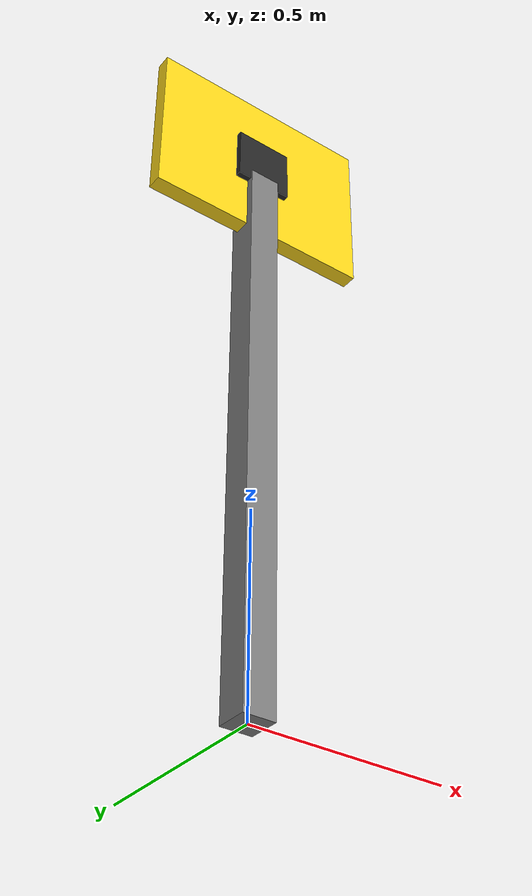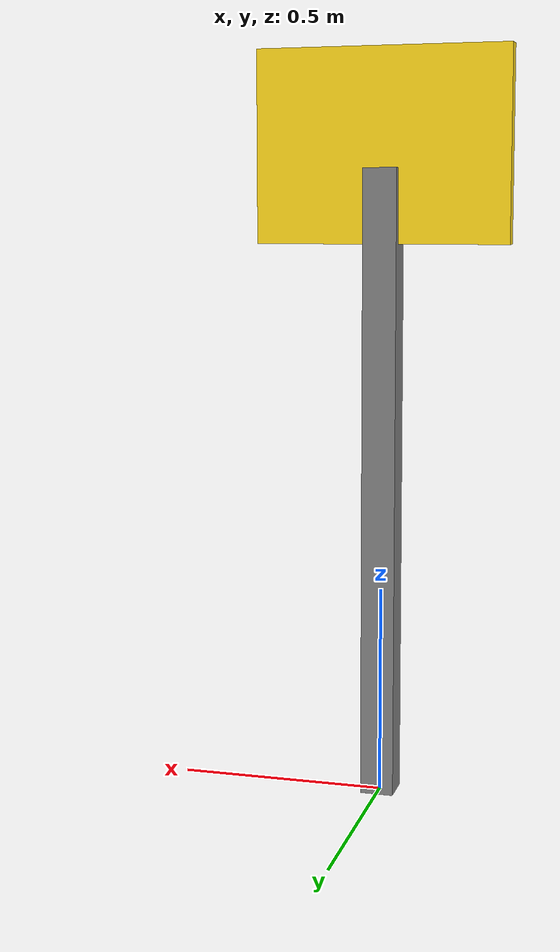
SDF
<?xml version="1.0"?>
<sdf version="1.10">
  <model name="warning_sign">
    <static>true</static>
    <link name="link">
      <visual name="post">
        <pose>0 0 0.75 0 0 0</pose>
        <geometry>
          <box>
            <size>0.08 0.08 1.5</size>
          </box>
        </geometry>
        <material>
          <ambient>0.4 0.4 0.4 1</ambient>
          <diffuse>0.5 0.5 0.5 1</diffuse>
        </material>
      </visual>
      <visual name="sign">
        <pose>0 0 1.55 0 0 0</pose>
        <geometry>
          <box>
            <size>0.6 0.04 0.45</size>
          </box>
        </geometry>
        <material>
          <ambient>0.9 0.75 0.05 1</ambient>
          <diffuse>1 0.85 0.1 1</diffuse>
        </material>
      </visual>
      <visual name="symbol">
        <pose>0 -0.025 1.55 0 0 0</pose>
        <geometry>
          <box>
            <size>0.15 0.02 0.15</size>
          </box>
        </geometry>
        <material>
          <ambient>0.1 0.1 0.1 1</ambient>
          <diffuse>0.15 0.15 0.15 1</diffuse>
        </material>
      </visual>
    </link>
  </model>
</sdf>
